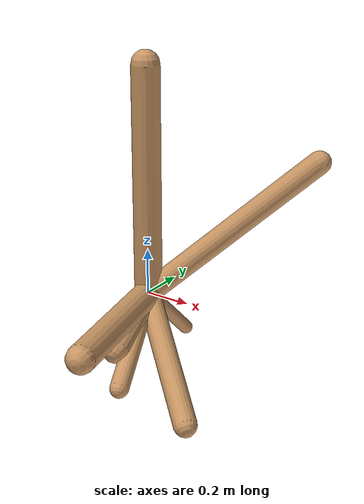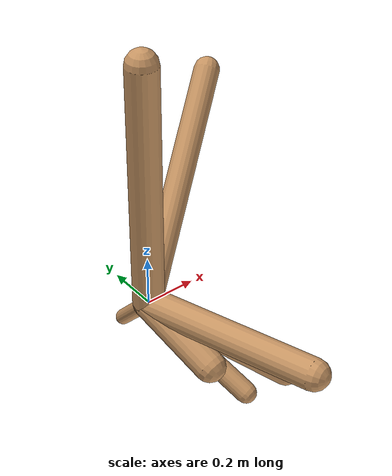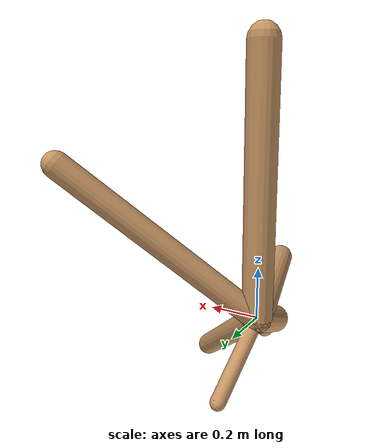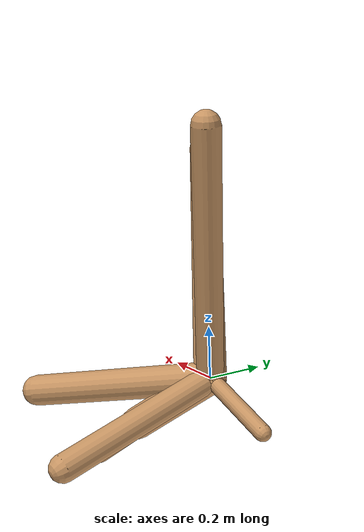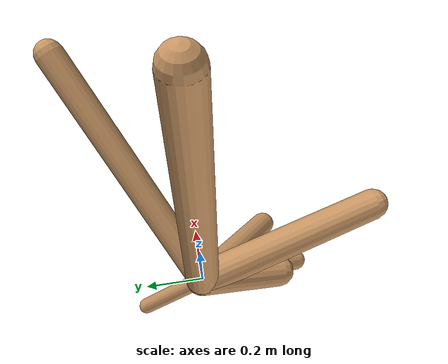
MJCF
<!--
                    joint_number: 6
                    -->
                    <mujoco model="randomrobot">
                        <compiler angle="degree" coordinate="global" inertiafromgeom="true"/>
                        <default>
                        <joint armature="0.01" damping=".1" limited="true"/>
                        <geom conaffinity="0" condim="3" contype="1" density="1000" friction="0.8 .1 .1" rgba="0.8 0.6 .4 1"/>
                        </default>
                        <option integrator="RK4" timestep="0.002"/>
                        <worldbody>
                    <body name='torso' pos='0.00 0.00 0.81'><geom fromto='0 0 0 0.00 0.00 1.00' name='torso_geom' size='0.06' type='capsule'/><inertial mass='0.3'/><body name='L0_D1' pos='0.00 0.00 0.73'><joint axis='1 0 0' name='L0_D1_joint' pos='0 0 0' range='46.65 113.36' type='hinge'/><geom fromto='0 0 0 0.41 -0.32 -0.36' name='L0_D1_geom' size='0.05' type='capsule'/><inertial mass='0.3'/><body name='L1_D0' pos='0.37 -0.30 -0.33'><joint axis='1 0 0' name='L1_D0_joint' pos='0 0 0' range='89.50 143.97' type='hinge'/><geom fromto='0 0 0 0.59 0.40 0.59' name='L1_D0_geom' size='0.05' type='capsule'/><inertial mass='0.3'/></body><body name='L2_D0' pos='0.09 -0.07 -0.08'><joint axis='0 0 1' name='L2_D0_joint' pos='0 0 0' range='4.08 30.90' type='hinge'/><geom fromto='0 0 0 0.19 -0.69 0.04' name='L2_D0_geom' size='0.06' type='capsule'/><inertial mass='0.3'/></body></body><body name='L3_D1' pos='0.00 0.00 0.64'><joint axis='0 1 0' name='L3_D1_joint' pos='0 0 0' range='78.84 157.15' type='hinge'/><geom fromto='0 0 0 0.04 0.23 -0.25' name='L3_D1_geom' size='0.03' type='capsule'/><inertial mass='0.3'/></body><body name='L4_D1' pos='0.00 0.00 0.14'><joint axis='0 1 0' name='L4_D1_joint' pos='0 0 0' range='29.18 36.23' type='hinge'/><geom fromto='0 0 0 0.05 -0.30 -0.13' name='L4_D1_geom' size='0.06' type='capsule'/><inertial mass='0.3'/><body name='L5_D0' pos='0.04 -0.23 -0.11'><joint axis='1 0 0' name='L5_D0_joint' pos='0 0 0' range='60.58 131.88' type='hinge'/><geom fromto='0 0 0 0.14 -0.40 -0.24' name='L5_D0_geom' size='0.04' type='capsule'/><inertial mass='0.3'/></body></body></body>
                        </worldbody>
                    </mujoco>
